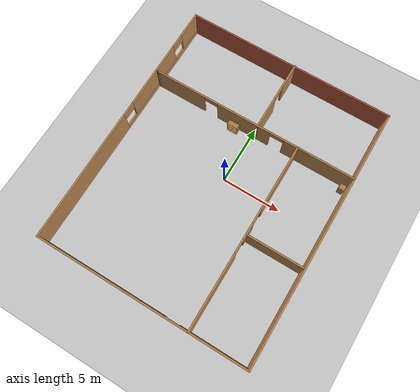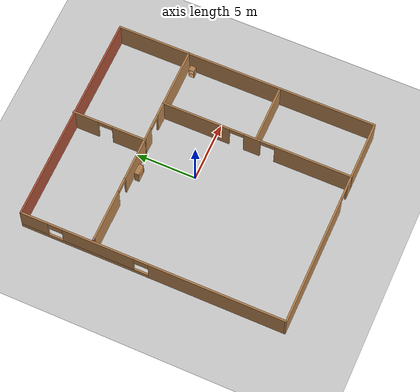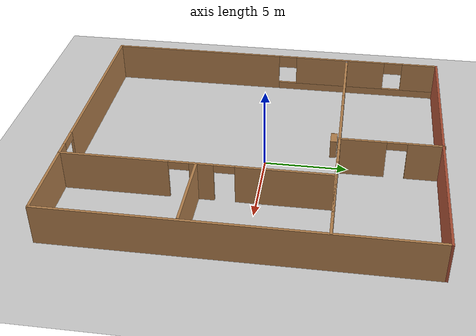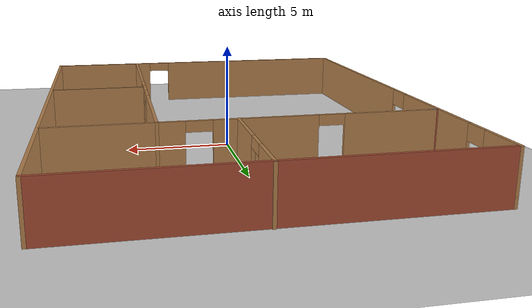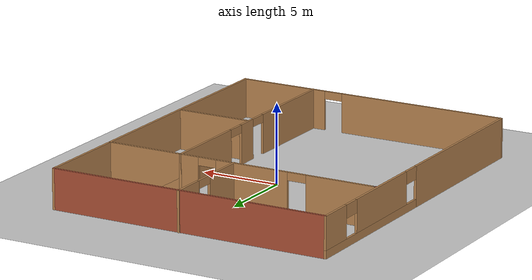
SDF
<sdf version="1.6">
 <world name="default">
  <model name="ground_plane">
   <static>1</static>
   <link name="link">
    <collision name="collision">
     <geometry><plane><normal>0 0 1</normal><size>100 100</size></plane></geometry>
     <surface>
      <contact><collide_bitmask>65535</collide_bitmask></contact>
      <friction><ode><mu>100</mu><mu2>50</mu2></ode></friction>
     </surface>
    </collision>
    <visual name="visual">
     <cast_shadows>0</cast_shadows>
     <geometry><plane><normal>0 0 1</normal><size>100 100</size></plane></geometry>
     <material>
      <script><uri>file://media/materials/scripts/gazebo.material</uri><name>Gazebo/Grey</name></script>
     </material>
    </visual>
   </link>
  </model>
  <model name="Apartment_plan">
   <pose>-0.153982 -0.424253 0 0 -0 0</pose>
   <link name="Wall_11">
    <collision name="Wall_11_Collision">
     <geometry><box><size>18 0.15 2.5</size></box></geometry>
     <pose>0 0 1.25 0 -0 0</pose>
    </collision>
    <visual name="Wall_11_Visual">
     <pose>0 0 1.25 0 -0 0</pose>
     <geometry><box><size>18 0.15 2.5</size></box></geometry>
     <material>
      <script><uri>file://media/materials/scripts/gazebo.material</uri><name>Gazebo/Bricks</name></script>
      <ambient>0.996078 0.47451 0.0196078 1</ambient>
     </material>
     <meta><layer>0</layer></meta>
    </visual>
    <pose>0 10.9013 0 0 -0 0</pose>
   </link>
   <link name="Wall_13">
    <collision name="Wall_13_Collision">
     <geometry><box><size>22 0.15 2.5</size></box></geometry>
     <pose>0 0 1.25 0 -0 0</pose>
    </collision>
    <visual name="Wall_13_Visual">
     <pose>0 0 1.25 0 -0 0</pose>
     <geometry><box><size>22 0.15 2.5</size></box></geometry>
     <material>
      <script><uri>file://media/materials/scripts/gazebo.material</uri><name>Gazebo/Wood</name></script>
      <ambient>1 1 1 1</ambient>
     </material>
     <meta><layer>0</layer></meta>
    </visual>
    <pose>8.925 -0.023674 0 0 -0 1.5708</pose>
   </link>
   <link name="Wall_15">
    <pose>4.04673 -3.03739 0 0 -0 1.5708</pose>
    <visual name="Wall_15_Visual_0">
     <pose>-4.7743 0 1.25 0 -0 0</pose>
     <geometry><box><size>6.4514 0.15 2.5</size></box></geometry>
     <material>
      <script><uri>file://media/materials/scripts/gazebo.material</uri><name>Gazebo/Wood</name></script>
      <ambient>1 1 1 1</ambient>
     </material>
     <meta><layer>0</layer></meta>
    </visual>
    <collision name="Wall_15_Collision_0">
     <geometry><box><size>6.4514 0.15 2.5</size></box></geometry>
     <pose>-4.7743 0 1.25 0 -0 0</pose>
    </collision>
    <visual name="Wall_15_Visual_1">
     <pose>0.354806 0 1.25 0 -0 0</pose>
     <geometry><box><size>1.40682 0.15 2.5</size></box></geometry>
     <material>
      <script><uri>file://media/materials/scripts/gazebo.material</uri><name>Gazebo/Wood</name></script>
      <ambient>1 1 1 1</ambient>
     </material>
     <meta><layer>0</layer></meta>
    </visual>
    <collision name="Wall_15_Collision_1">
     <geometry><box><size>1.40682 0.15 2.5</size></box></geometry>
     <pose>0.354806 0 1.25 0 -0 0</pose>
    </collision>
    <visual name="Wall_15_Visual_2">
     <pose>5.12911 0 1.25 0 -0 0</pose>
     <geometry><box><size>5.74179 0.15 2.5</size></box></geometry>
     <material>
      <script><uri>file://media/materials/scripts/gazebo.material</uri><name>Gazebo/Wood</name></script>
      <ambient>1 1 1 1</ambient>
     </material>
     <meta><layer>0</layer></meta>
    </visual>
    <collision name="Wall_15_Collision_2">
     <geometry><box><size>5.74179 0.15 2.5</size></box></geometry>
     <pose>5.12911 0 1.25 0 -0 0</pose>
    </collision>
    <visual name="Wall_15_Visual_3">
     <pose>-0.948604 0 2.25 0 -0 0</pose>
     <geometry><box><size>1.2 0.15 0.5</size></box></geometry>
     <material>
      <script><uri>file://media/materials/scripts/gazebo.material</uri><name>Gazebo/Wood</name></script>
      <ambient>1 1 1 1</ambient>
     </material>
     <meta><layer>0</layer></meta>
    </visual>
    <collision name="Wall_15_Collision_3">
     <geometry><box><size>1.2 0.15 0.5</size></box></geometry>
     <pose>-0.948604 0 2.25 0 -0 0</pose>
    </collision>
    <visual name="Wall_15_Visual_4">
     <pose>1.65821 0 2.25 0 -0 0</pose>
     <geometry><box><size>1.2 0.15 0.5</size></box></geometry>
     <material>
      <script><uri>file://media/materials/scripts/gazebo.material</uri><name>Gazebo/Wood</name></script>
      <ambient>1 1 1 1</ambient>
     </material>
     <meta><layer>0</layer></meta>
    </visual>
    <collision name="Wall_15_Collision_4">
     <geometry><box><size>1.2 0.15 0.5</size></box></geometry>
     <pose>1.65821 0 2.25 0 -0 0</pose>
    </collision>
   </link>
   <link name="Wall_16">
    <collision name="Wall_16_Collision">
     <geometry><box><size>5 0.15 2.5</size></box></geometry>
     <pose>0 0 1.25 0 -0 0</pose>
    </collision>
    <visual name="Wall_16_Visual">
     <pose>0 0 1.25 0 -0 0</pose>
     <geometry><box><size>5 0.15 2.5</size></box></geometry>
     <material>
      <script><uri>file://media/materials/scripts/gazebo.material</uri><name>Gazebo/Wood</name></script>
      <ambient>1 1 1 1</ambient>
     </material>
     <meta><layer>0</layer></meta>
    </visual>
    <pose>6.47173 4.88761 0 0 -0 0</pose>
   </link>
   <link name="Wall_17">
    <pose>0.096731 4.88761 0 0 -0 3.14159</pose>
    <visual name="Wall_17_Visual_0">
     <pose>-5.80484 0 1.25 0 -0 0</pose>
     <geometry><box><size>6.14032 0.15 2.5</size></box></geometry>
     <material>
      <script><uri>file://media/materials/scripts/gazebo.material</uri><name>Gazebo/Wood</name></script>
      <ambient>0.533333 0.541176 0.521569 1</ambient>
     </material>
     <meta><layer>0</layer></meta>
    </visual>
    <collision name="Wall_17_Collision_0">
     <geometry><box><size>6.14032 0.15 2.5</size></box></geometry>
     <pose>-5.80484 0 1.25 0 -0 0</pose>
    </collision>
    <visual name="Wall_17_Visual_1">
     <pose>0.844546 0 1.25 0 -0 0</pose>
     <geometry><box><size>4.75844 0.15 2.5</size></box></geometry>
     <material>
      <script><uri>file://media/materials/scripts/gazebo.material</uri><name>Gazebo/Wood</name></script>
      <ambient>0.533333 0.541176 0.521569 1</ambient>
     </material>
     <meta><layer>0</layer></meta>
    </visual>
    <collision name="Wall_17_Collision_1">
     <geometry><box><size>4.75844 0.15 2.5</size></box></geometry>
     <pose>0.844546 0 1.25 0 -0 0</pose>
    </collision>
    <visual name="Wall_17_Visual_2">
     <pose>6.64938 0 1.25 0 -0 0</pose>
     <geometry><box><size>4.45123 0.15 2.5</size></box></geometry>
     <material>
      <script><uri>file://media/materials/scripts/gazebo.material</uri><name>Gazebo/Wood</name></script>
      <ambient>0.533333 0.541176 0.521569 1</ambient>
     </material>
     <meta><layer>0</layer></meta>
    </visual>
    <collision name="Wall_17_Collision_2">
     <geometry><box><size>4.45123 0.15 2.5</size></box></geometry>
     <pose>6.64938 0 1.25 0 -0 0</pose>
    </collision>
    <visual name="Wall_17_Visual_3">
     <pose>-2.13468 0 2.25 0 -0 0</pose>
     <geometry><box><size>1.2 0.15 0.5</size></box></geometry>
     <material>
      <script><uri>file://media/materials/scripts/gazebo.material</uri><name>Gazebo/Wood</name></script>
      <ambient>0.533333 0.541176 0.521569 1</ambient>
     </material>
     <meta><layer>0</layer></meta>
    </visual>
    <collision name="Wall_17_Collision_3">
     <geometry><box><size>1.2 0.15 0.5</size></box></geometry>
     <pose>-2.13468 0 2.25 0 -0 0</pose>
    </collision>
    <visual name="Wall_17_Visual_4">
     <pose>3.82377 0 2.25 0 -0 0</pose>
     <geometry><box><size>1.2 0.15 0.5</size></box></geometry>
     <material>
      <script><uri>file://media/materials/scripts/gazebo.material</uri><name>Gazebo/Wood</name></script>
      <ambient>0.533333 0.541176 0.521569 1</ambient>
     </material>
     <meta><layer>0</layer></meta>
    </visual>
    <collision name="Wall_17_Collision_4">
     <geometry><box><size>1.2 0.15 0.5</size></box></geometry>
     <pose>3.82377 0 2.25 0 -0 0</pose>
    </collision>
   </link>
   <link name="Wall_18">
    <collision name="Wall_18_Collision">
     <geometry><box><size>0.15 0.15 2.5</size></box></geometry>
     <pose>0 0 1.25 0 -0 0</pose>
    </collision>
    <visual name="Wall_18_Visual">
     <pose>0 0 1.25 0 -0 0</pose>
     <geometry><box><size>0.15 0.15 2.5</size></box></geometry>
     <material>
      <script><uri>file://media/materials/scripts/gazebo.material</uri><name>Gazebo/Grey</name></script>
      <ambient>1 1 1 1</ambient>
     </material>
     <meta><layer>0</layer></meta>
    </visual>
    <pose>-8.70327 4.88761 0 0 -0 0</pose>
   </link>
   <link name="Wall_19">
    <collision name="Wall_19_Collision">
     <geometry><box><size>0.25 0.15 2.5</size></box></geometry>
     <pose>0 0 1.25 0 -0 0</pose>
    </collision>
    <visual name="Wall_19_Visual">
     <pose>0 0 1.25 0 -0 0</pose>
     <geometry><box><size>0.25 0.15 2.5</size></box></geometry>
     <material>
      <script><uri>file://media/materials/scripts/gazebo.material</uri><name>Gazebo/Bricks</name></script>
      <ambient>1 1 1 1</ambient>
     </material>
     <meta><layer>0</layer></meta>
    </visual>
    <pose>-8.75327 4.88761 0 0 -0 3.14159</pose>
   </link>
   <link name="Wall_21">
    <pose>0.498992 7.91239 0 0 -0 1.5708</pose>
    <visual name="Wall_21_Visual_0">
     <pose>-1.69364 0 1.25 0 -0 0</pose>
     <geometry><box><size>2.86272 0.15 2.5</size></box></geometry>
     <material>
      <script><uri>file://media/materials/scripts/gazebo.material</uri><name>Gazebo/Wood</name></script>
      <ambient>1 1 1 1</ambient>
     </material>
     <meta><layer>0</layer></meta>
    </visual>
    <collision name="Wall_21_Collision_0">
     <geometry><box><size>2.86272 0.15 2.5</size></box></geometry>
     <pose>-1.69364 0 1.25 0 -0 0</pose>
    </collision>
    <visual name="Wall_21_Visual_1">
     <pose>2.03136 0 1.25 0 -0 0</pose>
     <geometry><box><size>2.18729 0.15 2.5</size></box></geometry>
     <material>
      <script><uri>file://media/materials/scripts/gazebo.material</uri><name>Gazebo/Wood</name></script>
      <ambient>1 1 1 1</ambient>
     </material>
     <meta><layer>0</layer></meta>
    </visual>
    <collision name="Wall_21_Collision_1">
     <geometry><box><size>2.18729 0.15 2.5</size></box></geometry>
     <pose>2.03136 0 1.25 0 -0 0</pose>
    </collision>
    <visual name="Wall_21_Visual_2">
     <pose>0.337715 0 2.25 0 -0 0</pose>
     <geometry><box><size>1.2 0.15 0.5</size></box></geometry>
     <material>
      <script><uri>file://media/materials/scripts/gazebo.material</uri><name>Gazebo/Wood</name></script>
      <ambient>1 1 1 1</ambient>
     </material>
     <meta><layer>0</layer></meta>
    </visual>
    <collision name="Wall_21_Collision_2">
     <geometry><box><size>1.2 0.15 0.5</size></box></geometry>
     <pose>0.337715 0 2.25 0 -0 0</pose>
    </collision>
   </link>
   <link name="Wall_23">
    <collision name="Wall_23_Collision">
     <geometry><box><size>4.75 0.15 2.5</size></box></geometry>
     <pose>0 0 1.25 0 -0 0</pose>
    </collision>
    <visual name="Wall_23_Visual">
     <pose>0 0 1.25 0 -0 0</pose>
     <geometry><box><size>4.75 0.15 2.5</size></box></geometry>
     <material>
      <script><uri>file://media/materials/scripts/gazebo.material</uri><name>Gazebo/Wood</name></script>
      <ambient>1 1 1 1</ambient>
     </material>
     <meta><layer>0</layer></meta>
    </visual>
    <pose>6.44662 -2.97518 0 0 -0 0</pose>
   </link>
   <link name="Wall_7">
    <pose>0 -10.9487 0 0 -0 0</pose>
    <visual name="Wall_7_Visual_0">
     <pose>-3.4981 0 1.25 0 -0 0</pose>
     <geometry><box><size>11.0038 0.15 2.5</size></box></geometry>
     <material>
      <script><uri>file://media/materials/scripts/gazebo.material</uri><name>Gazebo/Wood</name></script>
      <ambient>1 1 1 1</ambient>
     </material>
     <meta><layer>0</layer></meta>
    </visual>
    <collision name="Wall_7_Collision_0">
     <geometry><box><size>11.0038 0.15 2.5</size></box></geometry>
     <pose>-3.4981 0 1.25 0 -0 0</pose>
    </collision>
    <visual name="Wall_7_Visual_1">
     <pose>6.10191 0 1.25 0 -0 0</pose>
     <geometry><box><size>5.79619 0.15 2.5</size></box></geometry>
     <material>
      <script><uri>file://media/materials/scripts/gazebo.material</uri><name>Gazebo/Wood</name></script>
      <ambient>1 1 1 1</ambient>
     </material>
     <meta><layer>0</layer></meta>
    </visual>
    <collision name="Wall_7_Collision_1">
     <geometry><box><size>5.79619 0.15 2.5</size></box></geometry>
     <pose>6.10191 0 1.25 0 -0 0</pose>
    </collision>
    <visual name="Wall_7_Visual_2">
     <pose>2.60381 0 2.25 0 -0 0</pose>
     <geometry><box><size>1.2 0.15 0.5</size></box></geometry>
     <material>
      <script><uri>file://media/materials/scripts/gazebo.material</uri><name>Gazebo/Wood</name></script>
      <ambient>1 1 1 1</ambient>
     </material>
     <meta><layer>0</layer></meta>
    </visual>
    <collision name="Wall_7_Collision_2">
     <geometry><box><size>1.2 0.15 0.5</size></box></geometry>
     <pose>2.60381 0 2.25 0 -0 0</pose>
    </collision>
   </link>
   <link name="Wall_9">
    <pose>-8.925 -0.023674 0 0 -0 1.5708</pose>
    <visual name="Wall_9_Visual_0">
     <pose>-5.35285 0 1.25 0 -0 0</pose>
     <geometry><box><size>11.2943 0.15 2.5</size></box></geometry>
     <material>
      <script><uri>file://media/materials/scripts/gazebo.material</uri><name>Gazebo/Wood</name></script>
      <ambient>0.533333 0.541176 0.521569 1</ambient>
     </material>
     <meta><layer>0</layer></meta>
    </visual>
    <collision name="Wall_9_Collision_0">
     <geometry><box><size>11.2943 0.15 2.5</size></box></geometry>
     <pose>-5.35285 0 1.25 0 -0 0</pose>
    </collision>
    <visual name="Wall_9_Visual_1">
     <pose>5.64715 0 0.25 0 -0 0</pose>
     <geometry><box><size>10.7057 0.15 0.5</size></box></geometry>
     <material>
      <script><uri>file://media/materials/scripts/gazebo.material</uri><name>Gazebo/Wood</name></script>
      <ambient>0.533333 0.541176 0.521569 1</ambient>
     </material>
     <meta><layer>0</layer></meta>
    </visual>
    <collision name="Wall_9_Collision_1">
     <geometry><box><size>10.7057 0.15 0.5</size></box></geometry>
     <pose>5.64715 0 0.25 0 -0 0</pose>
    </collision>
    <visual name="Wall_9_Visual_2">
     <pose>4.47763 0 1.5 0 -0 0</pose>
     <geometry><box><size>5.96668 0.15 2</size></box></geometry>
     <material>
      <script><uri>file://media/materials/scripts/gazebo.material</uri><name>Gazebo/Wood</name></script>
      <ambient>0.533333 0.541176 0.521569 1</ambient>
     </material>
     <meta><layer>0</layer></meta>
    </visual>
    <collision name="Wall_9_Collision_2">
     <geometry><box><size>5.96668 0.15 2</size></box></geometry>
     <pose>4.47763 0 1.5 0 -0 0</pose>
    </collision>
    <visual name="Wall_9_Visual_3">
     <pose>9.83049 0 1.5 0 -0 0</pose>
     <geometry><box><size>2.33903 0.15 2</size></box></geometry>
     <material>
      <script><uri>file://media/materials/scripts/gazebo.material</uri><name>Gazebo/Wood</name></script>
      <ambient>0.533333 0.541176 0.521569 1</ambient>
     </material>
     <meta><layer>0</layer></meta>
    </visual>
    <collision name="Wall_9_Collision_3">
     <geometry><box><size>2.33903 0.15 2</size></box></geometry>
     <pose>9.83049 0 1.5 0 -0 0</pose>
    </collision>
    <visual name="Wall_9_Visual_4">
     <pose>0.894292 0 2.1 0 -0 0</pose>
     <geometry><box><size>1.2 0.15 0.8</size></box></geometry>
     <material>
      <script><uri>file://media/materials/scripts/gazebo.material</uri><name>Gazebo/Wood</name></script>
      <ambient>0.533333 0.541176 0.521569 1</ambient>
     </material>
     <meta><layer>0</layer></meta>
    </visual>
    <collision name="Wall_9_Collision_4">
     <geometry><box><size>1.2 0.15 0.8</size></box></geometry>
     <pose>0.894292 0 2.1 0 -0 0</pose>
    </collision>
    <visual name="Wall_9_Visual_5">
     <pose>8.06097 0 2.1 0 -0 0</pose>
     <geometry><box><size>1.2 0.15 0.8</size></box></geometry>
     <material>
      <script><uri>file://media/materials/scripts/gazebo.material</uri><name>Gazebo/Wood</name></script>
      <ambient>0.533333 0.541176 0.521569 1</ambient>
     </material>
     <meta><layer>0</layer></meta>
    </visual>
    <collision name="Wall_9_Collision_5">
     <geometry><box><size>1.2 0.15 0.8</size></box></geometry>
     <pose>8.06097 0 2.1 0 -0 0</pose>
    </collision>
   </link>
   <static>1</static>
  </model>
  <model name="cabinet">
   <static>1</static>
   <link name="cabinet_bottom_plate">
    <inertial>
     <pose>0 0 -1 0 -0 0</pose>
     <inertia><ixx>2.05</ixx><ixy>0</ixy><ixz>0</ixz><iyy>2.05</iyy><iyz>0</iyz><izz>2.05</izz></inertia>
     <mass>25</mass>
    </inertial>
    <collision name="cabinet_bottom_plate_geom">
     <pose>0 0 0.01 0 -0 0</pose>
     <geometry><box><size>0.45 0.45 0.02</size></box></geometry>
    </collision>
    <visual name="cabinet_bottom_plate_geom_visual">
     <pose>0 0 0.01 0 -0 0</pose>
     <geometry><box><size>0.45 0.45 0.02</size></box></geometry>
     <material>
      <script><uri>file://media/materials/scripts/gazebo.material</uri><name>Gazebo/Wood</name></script>
     </material>
    </visual>
    <collision name="cabinet_bottom_plate_geom_cabinet_back_plate">
     <pose>0.235 0 0.51 0 -0 0</pose>
     <geometry><box><size>0.02 0.45 1.02</size></box></geometry>
    </collision>
    <visual name="cabinet_bottom_plate_geom_cabinet_back_plate_visual">
     <pose>0.235 0 0.51 0 -0 0</pose>
     <geometry><box><size>0.02 0.45 1.02</size></box></geometry>
     <material>
      <script><uri>file://media/materials/scripts/gazebo.material</uri><name>Gazebo/Wood</name></script>
     </material>
    </visual>
    <collision name="cabinet_bottom_plate_geom_cabinet_left_plate">
     <pose>0 0.235 0.51 0 -0 0</pose>
     <geometry><box><size>0.45 0.02 1.02</size></box></geometry>
    </collision>
    <visual name="cabinet_bottom_plate_geom_cabinet_left_plate_visual">
     <pose>0 0.235 0.51 0 -0 0</pose>
     <geometry><box><size>0.45 0.02 1.02</size></box></geometry>
     <material>
      <script><uri>file://media/materials/scripts/gazebo.material</uri><name>Gazebo/Wood</name></script>
     </material>
    </visual>
    <collision name="cabinet_bottom_plate_geom_cabinet_middle_plate">
     <pose>0 0 0.51 0 -0 0</pose>
     <geometry><box><size>0.45 0.45 0.02</size></box></geometry>
    </collision>
    <visual name="cabinet_bottom_plate_geom_cabinet_middle_plate_visual">
     <pose>0 0 0.51 0 -0 0</pose>
     <geometry><box><size>0.45 0.45 0.02</size></box></geometry>
     <material>
      <script><uri>file://media/materials/scripts/gazebo.material</uri><name>Gazebo/Wood</name></script>
     </material>
    </visual>
    <collision name="cabinet_bottom_plate_geom_cabinet_right_plate">
     <pose>0 -0.235 0.51 0 -0 0</pose>
     <geometry><box><size>0.45 0.02 1.02</size></box></geometry>
    </collision>
    <visual name="cabinet_bottom_plate_geom_cabinet_right_plate_visual">
     <pose>0 -0.235 0.51 0 -0 0</pose>
     <geometry><box><size>0.45 0.02 1.02</size></box></geometry>
     <material>
      <script><uri>file://media/materials/scripts/gazebo.material</uri><name>Gazebo/Wood</name></script>
     </material>
    </visual>
    <collision name="cabinet_bottom_plate_geom_cabinet_top_plate">
     <pose>0 0 1.01 0 -0 0</pose>
     <geometry><box><size>0.45 0.45 0.02</size></box></geometry>
    </collision>
    <visual name="cabinet_bottom_plate_geom_cabinet_top_plate_visual">
     <pose>0 0 1.01 0 -0 0</pose>
     <geometry><box><size>0.45 0.45 0.02</size></box></geometry>
     <material>
      <script><uri>file://media/materials/scripts/gazebo.material</uri><name>Gazebo/Wood</name></script>
     </material>
    </visual>
   </link>
   <pose>8.36254 3.98394 0 0 -0 0</pose>
  </model>
  <model name="bookshelf_0">
   <static>1</static>
   <link name="link">
    <inertial><mass>1</mass></inertial>
    <collision name="back">
     <pose>0 0.005 0.6 0 -0 0</pose>
     <geometry><box><size>0.9 0.01 1.2</size></box></geometry>
    </collision>
    <visual name="visual1">
     <pose>0 0.005 0.6 0 -0 0</pose>
     <geometry><box><size>0.9 0.01 1.2</size></box></geometry>
     <material>
      <script><uri>file://media/materials/scripts/gazebo.material</uri><name>Gazebo/Wood</name></script>
     </material>
    </visual>
    <collision name="left_side">
     <pose>0.45 -0.195 0.6 0 -0 0</pose>
     <geometry><box><size>0.02 0.4 1.2</size></box></geometry>
    </collision>
    <visual name="visual2">
     <pose>0.45 -0.195 0.6 0 -0 0</pose>
     <geometry><box><size>0.02 0.4 1.2</size></box></geometry>
     <material>
      <script><uri>file://media/materials/scripts/gazebo.material</uri><name>Gazebo/Wood</name></script>
     </material>
    </visual>
    <collision name="right_side">
     <pose>-0.45 -0.195 0.6 0 -0 0</pose>
     <geometry><box><size>0.02 0.4 1.2</size></box></geometry>
    </collision>
    <visual name="visual3">
     <pose>-0.45 -0.195 0.6 0 -0 0</pose>
     <geometry><box><size>0.02 0.4 1.2</size></box></geometry>
     <material>
      <script><uri>file://media/materials/scripts/gazebo.material</uri><name>Gazebo/Wood</name></script>
     </material>
    </visual>
    <collision name="bottom">
     <pose>0 -0.195 0.03 0 -0 0</pose>
     <geometry><box><size>0.88 0.4 0.06</size></box></geometry>
    </collision>
    <visual name="visual4">
     <pose>0 -0.195 0.03 0 -0 0</pose>
     <geometry><box><size>0.88 0.4 0.06</size></box></geometry>
     <material>
      <script><uri>file://media/materials/scripts/gazebo.material</uri><name>Gazebo/Wood</name></script>
     </material>
    </visual>
    <collision name="top">
     <pose>0 -0.195 1.19 0 -0 0</pose>
     <geometry><box><size>0.88 0.4 0.02</size></box></geometry>
    </collision>
    <visual name="visual5">
     <pose>0 -0.195 1.19 0 -0 0</pose>
     <geometry><box><size>0.88 0.4 0.02</size></box></geometry>
     <material>
      <script><uri>file://media/materials/scripts/gazebo.material</uri><name>Gazebo/Wood</name></script>
     </material>
    </visual>
    <collision name="low_shelf">
     <pose>0 -0.195 0.43 0 -0 0</pose>
     <geometry><box><size>0.88 0.4 0.02</size></box></geometry>
    </collision>
    <visual name="visual6">
     <pose>0 -0.195 0.43 0 -0 0</pose>
     <geometry><box><size>0.88 0.4 0.02</size></box></geometry>
     <material>
      <script><uri>file://media/materials/scripts/gazebo.material</uri><name>Gazebo/Wood</name></script>
     </material>
    </visual>
    <collision name="high_shelf">
     <pose>0 -0.195 0.8 0 -0 0</pose>
     <geometry><box><size>0.88 0.4 0.02</size></box></geometry>
    </collision>
    <visual name="visual7">
     <pose>0 -0.195 0.8 0 -0 0</pose>
     <geometry><box><size>0.88 0.4 0.02</size></box></geometry>
     <material>
      <script><uri>file://media/materials/scripts/gazebo.material</uri><name>Gazebo/Wood</name></script>
     </material>
    </visual>
   </link>
   <pose>-1.59454 4.29063 0 0 -0 0</pose>
  </model>
 </world>
</sdf>
